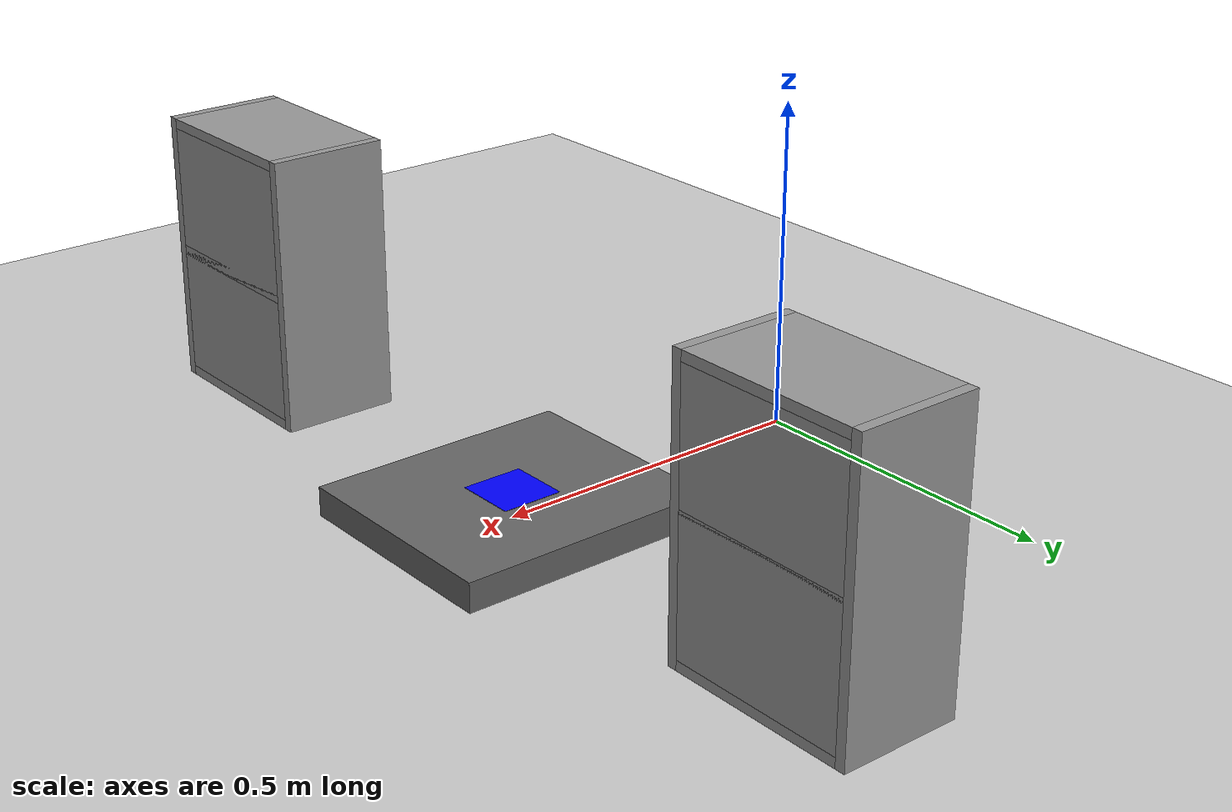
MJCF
<mujoco model="h1_2_mujoco_test">
  <compiler angle="radian" autolimits="true"/>
  <option timestep="0.002" gravity="0 0 -9.81"/>

  <worldbody>
    <light name="main_light" pos="0 0 2"/>

    <geom name="floor"
          type="plane"
          size="3 3 0.05"
          friction="1.0 0.01 0.001"
          rgba="0.8 0.8 0.8 1"/>

    <!-- For now this is only a physical reference object.
         The real H1-2 robot model will be added after confirming package/launch structure. -->
    <body name="cube" pos="0.435 0.5 0.08">
      <freejoint name="cube_freejoint"/>
      <geom name="cube_geom"
            type="box"
            size="0.0125 0.0125 0.0125"
            mass="0.05"
            friction="1.2 0.02 0.001"
            rgba="0 1 0 1"/>
    </body>

    <body name="aruco_mesa" pos="0.50 0.00 0.042">
      <geom name="aruco_marker_visual"
            type="box"
            size="0.0465 0.0465 0.001"
            rgba="0 0 1 1"
            contype="0"
            conaffinity="0"/>
    </body>

    <!-- Environment Table -->
    <body name="mesa_trabajo" pos="0.50 0.0 0.0174">
      <geom name="mesa_trabajo_geom"
            type="box"
            size="0.20 0.175 0.025"
            rgba="0.4 0.4 0.4 1"
            contype="0"
            conaffinity="0"
            friction="1.0 0.01 0.001"/>
    </body>

    <!-- Left Shelf -->
    <body name="env_left_shelf" pos="0.50 0.58 0.21">
      <!-- Left side wall -->
      <geom name="env_left_shelf_side_left_geom" type="box" size="0.09 0.0075 0.21" pos="0.0 0.1425 0.0" rgba="0.6 0.6 0.6 1" contype="0" conaffinity="0"/>
      <!-- Right side wall -->
      <geom name="env_left_shelf_side_right_geom" type="box" size="0.09 0.0075 0.21" pos="0.0 -0.1425 0.0" rgba="0.6 0.6 0.6 1" contype="0" conaffinity="0"/>
      <!-- Top panel -->
      <geom name="env_left_shelf_top_geom" type="box" size="0.09 0.135 0.0075" pos="0.0 0.0 0.2025" rgba="0.6 0.6 0.6 1" contype="0" conaffinity="0"/>
      <!-- Bottom panel -->
      <geom name="env_left_shelf_bottom_geom" type="box" size="0.09 0.135 0.0075" pos="0.0 0.0 -0.2025" rgba="0.6 0.6 0.6 1" contype="0" conaffinity="0"/>
      <!-- Back panel (facing robot, so back is at +X) -->
      <geom name="env_left_shelf_back_geom" type="box" size="0.0075 0.135 0.195" pos="0.0825 0.0 0.0" rgba="0.6 0.6 0.6 1" contype="0" conaffinity="0"/>
      <!-- Dividers (levels) -->
      <geom name="env_left_shelf_level_1_geom" type="box" size="0.09 0.135 0.0075" pos="0.0 0.0 0.0" rgba="0.6 0.6 0.6 1" contype="0" conaffinity="0"/>
    </body>

    <!-- Right Shelf -->
    <body name="env_right_shelf" pos="0.50 -0.58 0.21">
      <!-- Left side wall -->
      <geom name="env_right_shelf_side_left_geom" type="box" size="0.09 0.0075 0.21" pos="0.0 0.1425 0.0" rgba="0.6 0.6 0.6 1" contype="0" conaffinity="0"/>
      <!-- Right side wall -->
      <geom name="env_right_shelf_side_right_geom" type="box" size="0.09 0.0075 0.21" pos="0.0 -0.1425 0.0" rgba="0.6 0.6 0.6 1" contype="0" conaffinity="0"/>
      <!-- Top panel -->
      <geom name="env_right_shelf_top_geom" type="box" size="0.09 0.135 0.0075" pos="0.0 0.0 0.2025" rgba="0.6 0.6 0.6 1" contype="0" conaffinity="0"/>
      <!-- Bottom panel -->
      <geom name="env_right_shelf_bottom_geom" type="box" size="0.09 0.135 0.0075" pos="0.0 0.0 -0.2025" rgba="0.6 0.6 0.6 1" contype="0" conaffinity="0"/>
      <!-- Back panel (facing robot, so back is at +X) -->
      <geom name="env_right_shelf_back_geom" type="box" size="0.0075 0.135 0.195" pos="0.0825 0.0 0.0" rgba="0.6 0.6 0.6 1" contype="0" conaffinity="0"/>
      <!-- Dividers (levels) -->
      <geom name="env_right_shelf_level_1_geom" type="box" size="0.09 0.135 0.0075" pos="0.0 0.0 0.0" rgba="0.6 0.6 0.6 1" contype="0" conaffinity="0"/>
    </body>
  </worldbody>
</mujoco>
